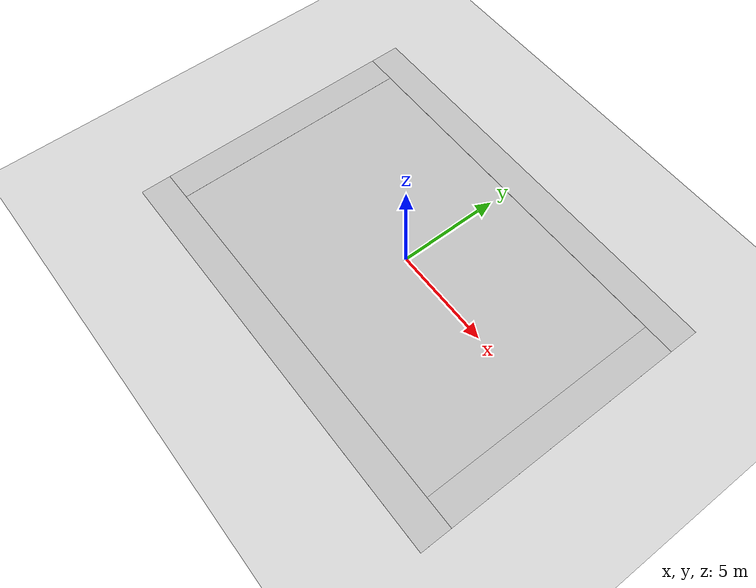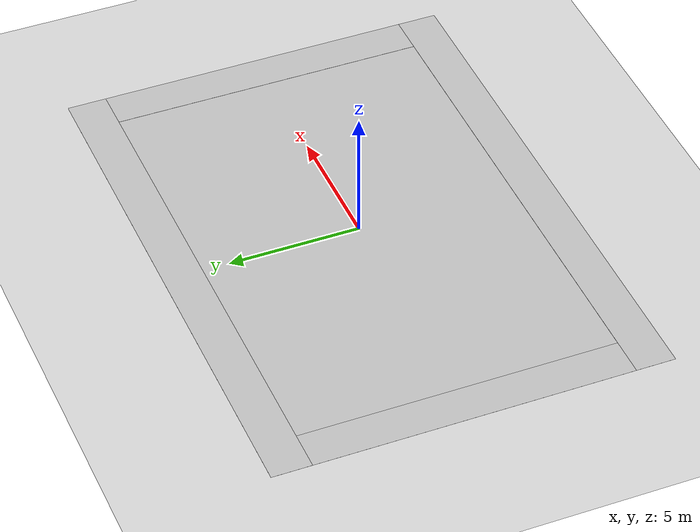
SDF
<?xml version="1.0" ?>
<sdf version='1.5'>
  <world name='RoboCon25'>
    <!-- scene -->
    <scene>
      <ambient>0.4 0.4 0.4 1</ambient>
      <background>0.7 0.7 0.7 1</background>
      <shadows>0</shadows>
    </scene>

    <!-- spherical_coordinates -->
    <spherical_coordinates>
      <surface_model>EARTH_WGS84</surface_model>
      <latitude_deg>0</latitude_deg>
      <longitude_deg>0</longitude_deg>
      <elevation>0</elevation>
      <heading_deg>0</heading_deg>
    </spherical_coordinates>

    <!-- lighting -->
    <light type="directional" name="sun">
      <cast_shadows>0</cast_shadows>

      <pose>0 0 10 0 0 0</pose>
      <diffuse>0.8 0.8 0.8 1</diffuse>
      <specular>0.2 0.2 0.2 1</specular>

      <attenuation>
        <range>1000</range>
        <constant>0.9</constant>
        <linear>0.01</linear>
        <quadratic>0.001</quadratic>
      </attenuation>

      <direction>-0.5 0.1 -0.9</direction>
    </light>

    <!-- gui -->
    <gui fullscreen='0'>
      <camera name='user_camera'>
        <pose>0 0 18 0 1.5707963 0</pose>
        <view_controller>orbit</view_controller>
      </camera>
    </gui>

    <!-- physics -->
    <physics type='ode'>
    <max_step_size>0.015</max_step_size>
    <real_time_update_rate>67</real_time_update_rate>
    <gravity>0 0 -9.8</gravity>
    </physics>

    <!-- The same as model://ground_plane -->
    <model name='ground_plane'>
      <static>true</static>
      <link name='link'>
        <collision name='collision'>
          <geometry>
            <plane>
              <normal>0 0 1</normal>
              <size>100 100</size>
            </plane>
          </geometry>
          <surface>
            <friction>
              <ode>
                <mu>100</mu>
                <mu2>50</mu2>
              </ode>
            </friction>
            <contact>
              <ode/>
            </contact>
            <bounce/>
          </surface>
          <max_contacts>10</max_contacts>
        </collision>
        <visual name='visual'>
          <cast_shadows>0</cast_shadows>
          <geometry>
            <plane>
              <normal>0 0 1</normal>
              <size>100 100</size>
            </plane>
          </geometry>
          <material>
            <script>
              <uri>file://media/materials/scripts/gazebo.material</uri>
              <name>Gazebo/Grey</name>
            </script>
          </material>
        </visual>
        <velocity_decay>
          <linear>0</linear>
          <angular>0</angular>
        </velocity_decay>
        <self_collide>0</self_collide>
        <kinematic>0</kinematic>
        <gravity>1</gravity>
      </link>
    </model>

    <!-- RoboCon 2025 Field -->
    <include>
        <pose>0 0 0 0 0 0</pose>
        <uri>model://RoboCon25_Field</uri>
        <name>field</name>
        <static>true</static>
    </include>

  </world>
</sdf>

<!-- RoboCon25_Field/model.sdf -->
<sdf version="1.4">
  <model name="RoboCon25_Field">
    <static>true</static>

    <link name="chassis">
      <pose>0 0 0.01 0 0 0</pose>
      <collision name="collision">
        <geometry>
          <plane>
            <normal>0 0 1</normal>
            <size>18 12</size>
          </plane>
        </geometry>
        <surface>
          <friction>
            <ode>
              <mu>100</mu>
              <mu2>50</mu2>
            </ode>
          </friction>
        </surface>
      </collision>

      <visual name="carpet">
        <cast_shadows>false</cast_shadows>
        <geometry>
          <plane>
            <normal>0 0 1</normal>
            <size>18 12</size>
          </plane>
        </geometry>
        <material>
          <script>
            <uri>model://robocon25_sim/materials/scripts/</uri>
            <uri>model://robocon25_sim/materials/textures/</uri>
            <name>RoboCon/Carpet</name>
          </script>
        </material>
      </visual>

       <visual name="base1">
        <pose>0 6.75 0.01 0 0 0</pose>
        <cast_shadows>false</cast_shadows>
        <geometry>
          <plane>
            <normal>0 0 1</normal>
            <size>21.0 1.5</size>
          </plane>
        </geometry>
        <material>
          <script>
            <uri>model://robocon25_sim/materials/scripts/</uri>
            <uri>model://robocon25_sim/materials/textures/</uri>
            <name>RoboCon/FieldBorder</name>
          </script>
        </material>
      </visual>
      <visual name="base2">
        <pose>0 -6.75 0.01 0 0 0</pose>
        <cast_shadows>false</cast_shadows>
        <geometry>
          <plane>
            <normal>0 0 1</normal>
            <size>21.0 1.5</size>
          </plane>
        </geometry>
        <material>
          <script>
            <uri>model://robocon25_sim/materials/scripts/</uri>
            <uri>model://robocon25_sim/materials/textures/</uri>
            <name>RoboCon/FieldBorder</name>
          </script>
        </material>
      </visual>
      <visual name="base3">
        <pose>9.75 0 0.01 0 0 0</pose>
        <cast_shadows>false</cast_shadows>
        <geometry>
          <plane>
            <normal>0 0 1</normal>
            <size>1.5 12.0</size>
          </plane>
        </geometry>
        <material>
          <script>
            <uri>model://robocon25_sim/materials/scripts/</uri>
            <uri>model://robocon25_sim/materials/textures/</uri>
            <name>RoboCon/FieldBorder</name>
          </script>
        </material>
      </visual>
      <visual name="base4">
        <pose>-9.75 0 0.01 0 0 0</pose>
        <cast_shadows>false</cast_shadows>
        <geometry>
          <plane>
            <normal>0 0 1</normal>
            <size>1.5 12.0</size>
          </plane>
        </geometry>
        <material>
          <script>
            <uri>model://robocon25_sim/materials/scripts/</uri>
            <uri>model://robocon25_sim/materials/textures/</uri>
            <name>RoboCon/FieldBorder</name>
          </script>
        </material>
      </visual>
    </link>

  </model>
</sdf>
